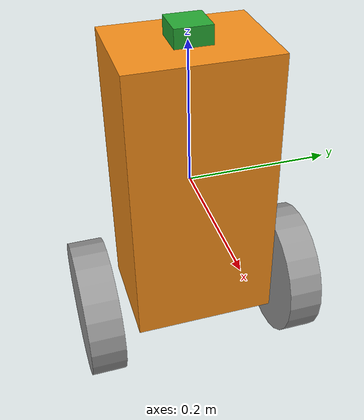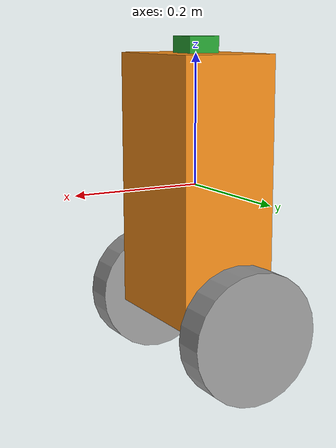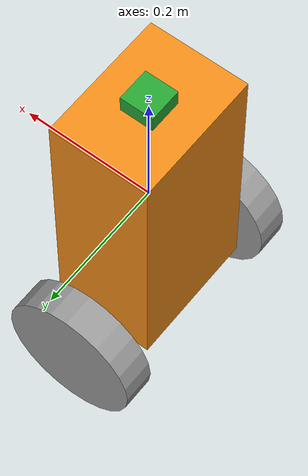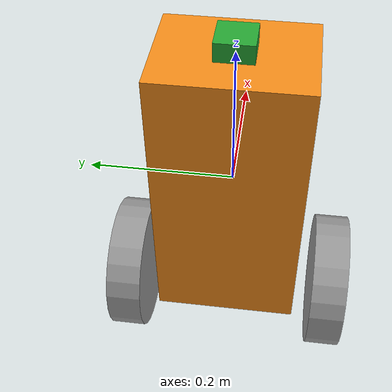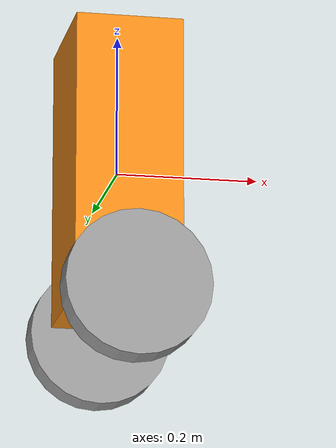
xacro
<?xml version='1.0'?>

<robot name="myrobot" xmlns:xacro="http://www.ros.org/wiki/xacro">

  <xacro:include filename="$(find mybot_description)/urdf/mybot.gazebo" />
  <xacro:include filename="$(find mybot_description)/urdf/materials.xacro" />
  <xacro:include filename="$(find mybot_description)/urdf/macros.xacro" />

  <link name='chassis'>
    <pose>0 0 0.1 0 0 0</pose>

    <inertial>
      <mass value="10.0"/>
      <origin xyz="0.0 0 -0.4" rpy=" 0 0 0"/>
      <inertia
          ixx="0.5" ixy="0" ixz="0"
          iyy="1.0" iyz="0"
          izz="0.1"
      />
    </inertial>

    <collision name='collision'>
      <geometry>
        <box size=".15 .2 .4"/>
      </geometry>
    </collision>

    <visual name='chassis_visual'>
      <origin xyz="0 0 0" rpy=" 0 0 0"/>
      <geometry>
        <box size=".15 .2 .4"/>
      </geometry>
    </visual>

  </link>

  <link name='imu'>

    <inertial>
      <mass value="0.01"/>
      <origin xyz="0.0 0 0.0" rpy=" 0 0 0"/>
      <inertia
          ixx="0.1" ixy="0" ixz="0"
          iyy="0.1" iyz="0"
          izz="0.1"
      />
    </inertial>

    <collision name='collision'>
      <geometry>
        <box size=".05 .05 .05"/>
      </geometry>
    </collision>

    <visual name='imu_visual'>
      <origin xyz="0 0 0" rpy=" 0 0 0"/>
      <geometry>
        <box size=".05 .05 .05"/>
      </geometry>
    </visual>

  </link>

  <link name="left_wheel">
    <!--origin xyz="0.1 0.13 0.1" rpy="0 1.5707 1.5707"/-->
    <collision name="collision">
      <origin xyz="0 0 0" rpy="0 1.5707 1.5707"/>
      <geometry>
        <cylinder radius="0.1" length="0.05"/>
      </geometry>
    </collision>
    <visual name="left_wheel_visual">
      <origin xyz="0 0 0" rpy="0 1.5707 1.5707"/>
      <geometry>
        <cylinder radius="0.1" length="0.05"/>
      </geometry>
    </visual>
    <inertial>
      <origin xyz="0 0 0" rpy="0 1.5707 1.5707"/>
      <mass value="5"/>
      <cylinder_inertia m="5" r="0.1" h="0.05"/>
      <inertia
        ixx="1.0" ixy="0.0" ixz="0.0"
        iyy="1.0" iyz="0.0"
        izz="1.0"/>
    </inertial>
  </link>

  <link name="right_wheel">
    <!--origin xyz="0.1 -0.13 0.1" rpy="0 1.5707 1.5707"/-->
    <collision name="collision">
      <origin xyz="0 0 0" rpy="0 1.5707 1.5707"/>
      <geometry>
        <cylinder radius="0.1" length="0.05"/>
      </geometry>
    </collision>
    <visual name="right_wheel_visual">
      <origin xyz="0 0 0" rpy="0 1.5707 1.5707"/>
      <geometry>
        <cylinder radius="0.1" length="0.05"/>
      </geometry>
    </visual>
    <inertial>
      <origin xyz="0 0 0" rpy="0 1.5707 1.5707"/>
      <mass value="5"/>
      <cylinder_inertia m="5" r="0.1" h="0.05"/>
      <inertia
        ixx="1.0" ixy="0.0" ixz="0.0"
        iyy="1.0" iyz="0.0"
        izz="1.0"/>
    </inertial>
  </link>

  <joint type="continuous" name="left_wheel_hinge">
    <origin xyz="0.0 0.15 -0.2" rpy="0 0 0"/>
    <child link="left_wheel"/>
    <parent link="chassis"/>
    <axis xyz="0 1 0" rpy="0 0 0"/>
    <limit effort="100" velocity="100"/>
    <joint_properties damping="0.0" friction="0.5"/>
  </joint>

  <joint type="continuous" name="right_wheel_hinge">
    <origin xyz="0.0 -0.15 -0.2" rpy="0 0 0"/>
    <child link="right_wheel"/>
    <parent link="chassis"/>
    <axis xyz="0 1 0" rpy="0 0 0"/>
    <limit effort="100" velocity="100"/>
    <joint_properties damping="0.0" friction="0.5"/>
  </joint>

  <joint type="fixed" name="imu_joint">
    <origin xyz="0.0 0.0 0.2" rpy="0 0 0"/>
    <child link="imu"/>
    <parent link="chassis"/>
  </joint>

</robot>
